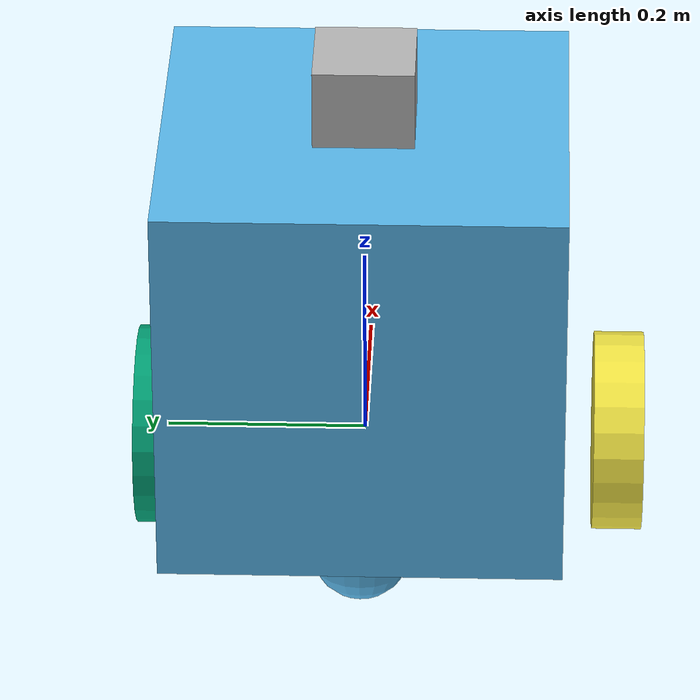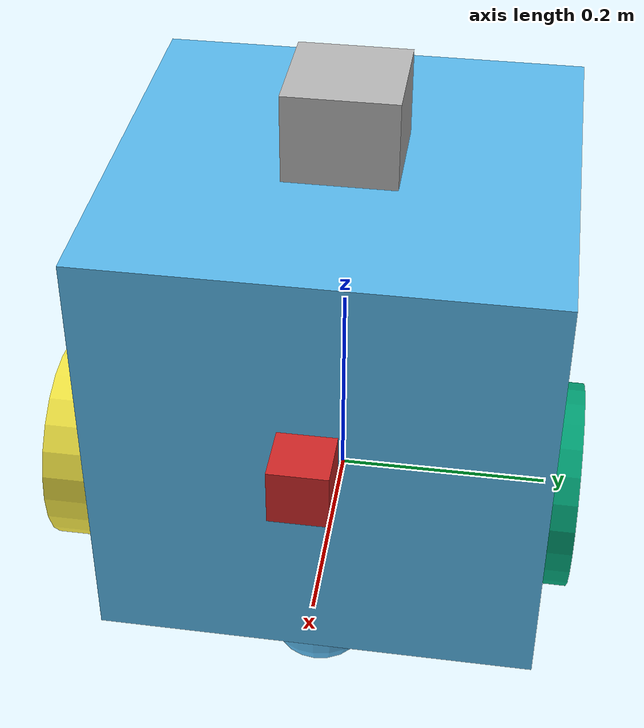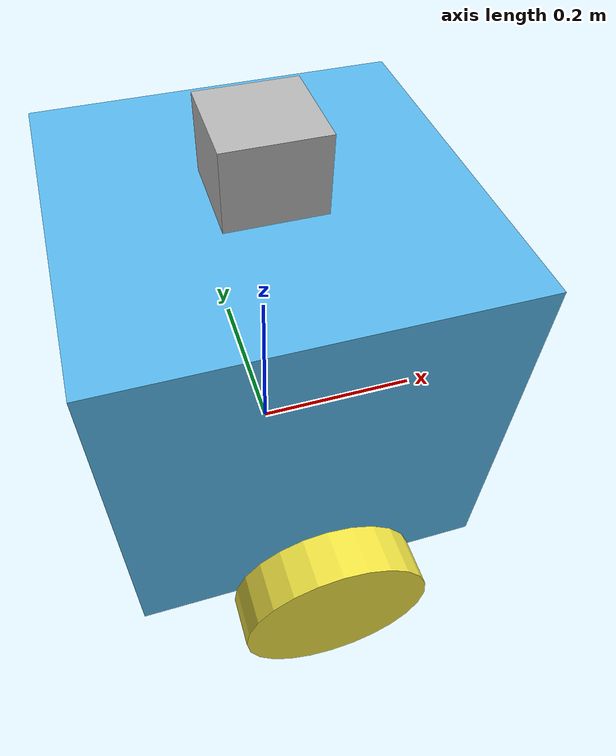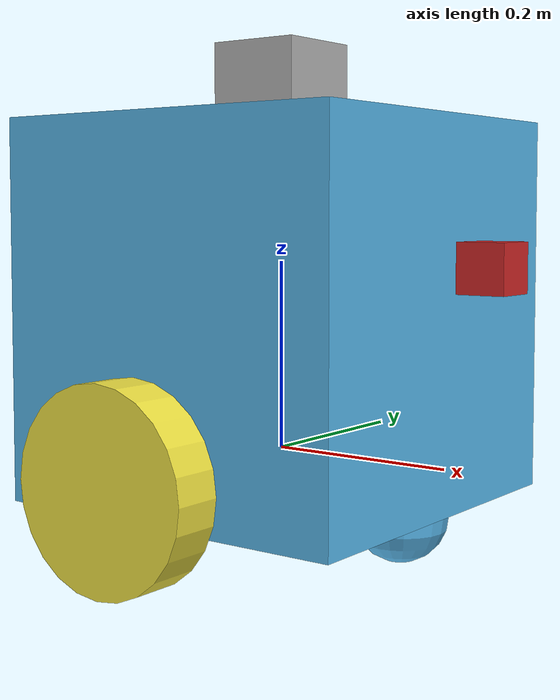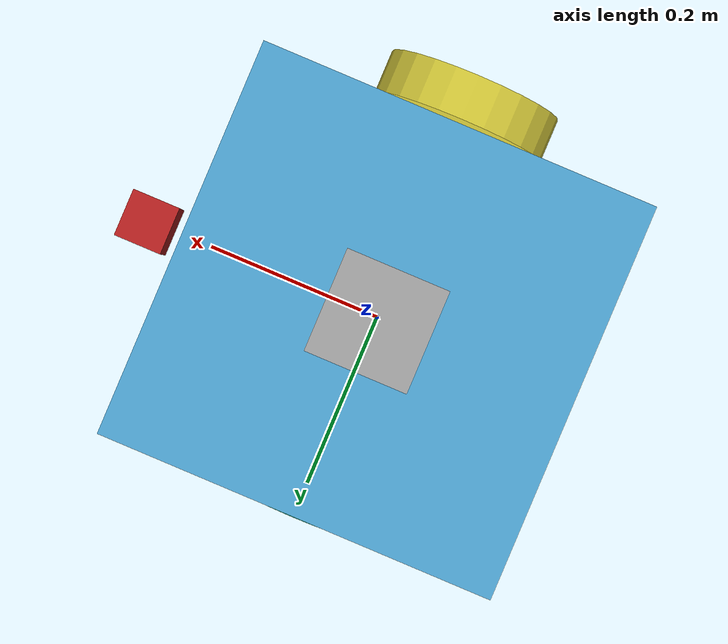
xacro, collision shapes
<?xml version='1.0'?>

<robot name="hurba_robot" xmlns:xacro="http://www.ros.org/wiki/xacro">
  <!--gazebo plugins-->
  <xacro:include filename="$(find hurba_advanced_navigation)/urdf/hurba_mecanum.gazebo" />

  <link name="base_footprint"></link>

  <!--joints-->
  <joint name="base_footprint_joint" type="fixed">
    <origin xyz="0 0 0" rpy="0 0 0" />
    <parent link="base_footprint"/>
    <child link="chassis" />
  </joint>

  <joint name="imu_joint" type="fixed">
    <origin xyz="0 0 0" rpy="0 0 0" />
    <parent link="chassis"/>
    <child link="imu_link" />
  </joint>

  <joint type="continuous" name="left_wheel_hinge">
    <origin xyz="0.0 0.205 0" rpy="0 0 0"/>
    <child link="left_wheel"/>
    <parent link="chassis"/>
    <axis xyz="0 1 0" rpy="0 0 0"/>
    <limit effort="10000" velocity="1000"/>
    <dynamics damping="0.0" friction="0.0"/>
  </joint>

  <joint type="continuous" name="right_wheel_hinge">
    <origin xyz="0.0 -0.255 0" rpy="0 0 0"/>
    <child link="right_wheel"/>
    <parent link="chassis"/>
    <axis xyz="0 1 0" rpy="0 0 0"/>
    <limit effort="10000" velocity="1000"/>
    <dynamics damping="0.0" friction="0.0"/>
  </joint>

  <joint type="fixed" name="camera_joint">
    <origin xyz="0.25 0 0.2" rpy="0 0 0"/>
    <child link="camera_link"/>
    <parent link="chassis"/>
    <axis xyz="0 1 0" rpy="0 0 0"/>
  </joint>

  <joint type="fixed" name="camera_optical_joint">
    <origin xyz="0 0 0" rpy="-1.5707 0 -1.5707"/>
    <child link="camera_link_optical"/>
    <parent link="camera_link"/>
  </joint>

  <joint type="fixed" name="scan_joint">
    <origin xyz="0.0 0 0.38" rpy="0 0 0"/>
    <child link="scan_link"/>
    <parent link="chassis"/>
    <axis xyz="0 1 0" rpy="0 0 0"/>
  </joint>

  <!--chassis-->
  <link name='chassis'>
    <pose>0 0 0.1 0 0 0</pose>

    <inertial>
      <mass value="15.0"/>
      <origin xyz="0.0 0 0" rpy=" 0 0 0"/>
      <inertia
          ixx="0.1" ixy="0" ixz="0"
          iyy="0.1" iyz="0"
          izz="0.1"
      />
    </inertial>

    <collision name='collision'>
      <origin xyz="0 0 0.15" rpy=" 0 0 0"/>
      <geometry>
        <box size=".4 .4 .4"/>
      </geometry>
    </collision>

    <visual name='chassis_visual'>
      <origin xyz="0 0 -0.05" rpy=" 0 0 3.14156"/>
      <geometry>
        <!--box size=".4 .4 .4"/-->
        <mesh filename = "package://hurba_advanced_navigation/meshes/chassis.dae"/>
      </geometry>
    </visual>

    <collision name='back_caster_collision'>
      <origin xyz="-0.15 0 -0.05" rpy=" 0 0 0"/>
      <geometry>
        <sphere radius="0.0499"/>
      </geometry>
    </collision>

    <visual name='back_caster_visual'>
      <origin xyz="-0.15 0 -0.05" rpy=" 0 0 0"/>
      <geometry>
        <sphere radius="0.05"/>
      </geometry>
    </visual>

    <collision name='front_caster_collision'>
      <origin xyz="0.15 0 -0.05" rpy=" 0 0 0"/>
      <geometry>
        <sphere radius="0.0499"/>
      </geometry>
    </collision>

    <visual name='front_caster_visual'>
      <origin xyz="0.15 0 -0.05" rpy=" 0 0 0"/>
      <geometry>
        <sphere radius="0.05"/>
      </geometry>
    </visual>
  </link>

  <!--left wheel-->
  <link name='left_wheel'>
    <inertial>
      <mass value="5.0"/>
      <origin xyz="0.0 0 0" rpy=" 0 1.5708 1.5707"/>
      <inertia
          ixx="0.1" ixy="0" ixz="0"
          iyy="0.1" iyz="0"
          izz="0.1"
      />
    </inertial>

    <collision name='collision'>
      <origin xyz="0.0 0 0" rpy=" 0 1.5708 1.5707"/>
      <geometry>
        <cylinder radius = ".1" length = ".05"/>
      </geometry>
    </collision>

    <visual name='left_wheel_visual'>
      <origin xyz="0.0 0 0" rpy=" 0 1.5708 1.5708"/>
      <geometry>
        <mesh filename = "package://hurba_advanced_navigation/meshes/wheel.dae"/>
        <!--cylinder radius = ".1" length = ".08"/-->
      </geometry>
    </visual>
  </link>

  <!--right wheel-->
  <link name='right_wheel'>
    <inertial>
      <mass value="5.0"/>
      <origin xyz="0 0 0" rpy=" 0 1.5708 1.5708"/>
      <inertia
          ixx="0.1" ixy="0" ixz="0"
          iyy="0.1" iyz="0"
          izz="0.1"
      />
    </inertial>

    <collision name='collision'>
      <origin xyz="0 0 0" rpy=" 0 1.5708 1.5708"/>
      <geometry>
        <cylinder radius = ".1" length = ".05"/>
      </geometry>
    </collision>

    <visual name='right_wheel_visual'>
      <origin xyz="0 0 0" rpy=" 0 1.5708 1.5708"/>
      <geometry>
        <mesh filename = "package://hurba_advanced_navigation/meshes/wheel.dae"/>
        <!--cylinder radius = ".1" length = ".08"/-->
      </geometry>
    </visual>
  </link>

  <!--camera-->
  <link name='camera_link'>
    <pose>0 0 0 0 0 0</pose>
    <inertial>
      <mass value="0.1"/>
      <origin xyz="0 0 0" rpy=" 0 0 0"/>
      <inertia
          ixx="1e-6" ixy="0" ixz="0"
          iyy="1e-6" iyz="0"
          izz="1e-6"
      />
    </inertial>

    <collision name='collision'>
      <origin xyz="0 0 0" rpy=" 0 0 0"/>
      <geometry>
        <box size=".05 .05 .05"/>
      </geometry>
    </collision>

    <visual name='camera_link_visual'>
      <origin xyz="0 0 0" rpy=" 0 0 0"/>
      <geometry>
        <box size=".05 .05 .05"/>
      </geometry>
    </visual>

  </link>

  <link name="camera_link_optical">
  </link>

  <link name="imu_link">
  </link>

  <!--lidar-->
  <link name='scan_link'>
    <inertial>
      <mass value="1e-5"/>
      <origin xyz="0 0 0" rpy=" 0 0 0"/>
      <inertia
          ixx="1e-6" ixy="0" ixz="0"
          iyy="1e-6" iyz="0"
          izz="1e-6"
      />
    </inertial>

    <collision name='collision'>
      <origin xyz="0 0 0" rpy=" 0 0 0"/>
      <geometry>
        <box size=".1 .1 .1"/>
      </geometry>
    </collision>

    <visual name='scan_link_visual'>
      <origin xyz="0 0 0" rpy=" 0 0 0"/>
      <geometry>
        <mesh filename = "package://hurba_advanced_navigation/meshes/hokuyo.dae"/>
      </geometry>
    </visual>

  </link>

  <!--camera color-->
  <gazebo reference="camera_link">
    <material>Gazebo/Red</material>
  </gazebo>

</robot>
